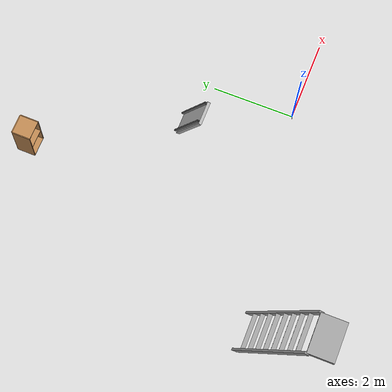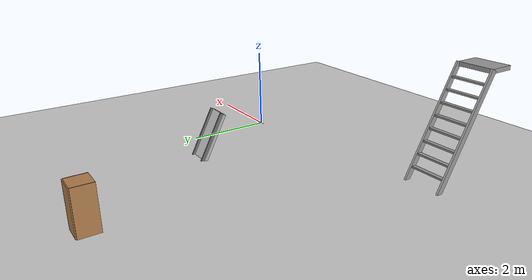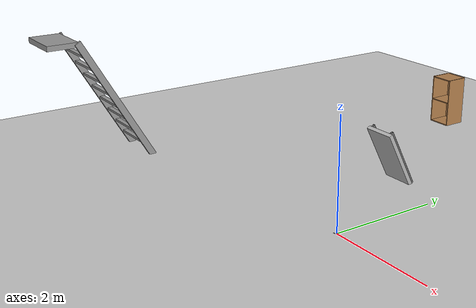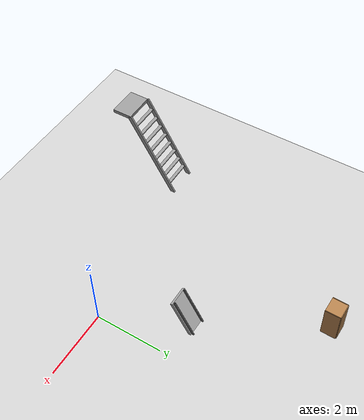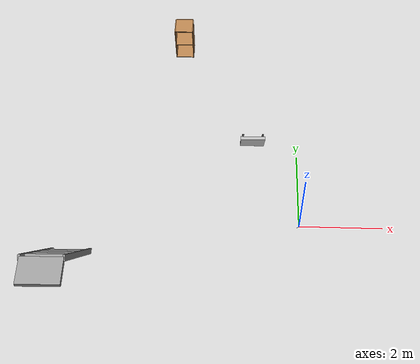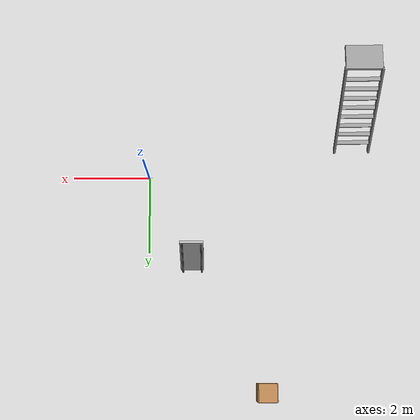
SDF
<sdf version="1.6">
 <world name="office">
  <model name="ground_plane">
   <static>1</static>
   <link name="link">
    <collision name="collision">
     <geometry><plane><normal>0 0 1</normal><size>100 100</size></plane></geometry>
     <surface><friction><ode><mu>100</mu><mu2>50</mu2></ode></friction></surface>
    </collision>
    <visual name="visual">
     <cast_shadows>0</cast_shadows>
     <geometry><plane><normal>0 0 1</normal><size>100 100</size></plane></geometry>
     <material>
      <script><uri>file://media/materials/scripts/gazebo.material</uri><name>Gazebo/Grey</name></script>
     </material>
    </visual>
   </link>
  </model>
  <model name="cabinet">
   <static>1</static>
   <link name="cabinet_bottom_plate">
    <inertial>
     <pose>0 0 -1 0 -0 0</pose>
     <inertia><ixx>2.05</ixx><ixy>0</ixy><ixz>0</ixz><iyy>2.05</iyy><iyz>0</iyz><izz>2.05</izz></inertia>
     <mass>25</mass>
    </inertial>
    <collision name="cabinet_bottom_plate_geom">
     <pose>0 0 0.01 0 -0 0</pose>
     <geometry><box><size>0.45 0.45 0.02</size></box></geometry>
    </collision>
    <visual name="cabinet_bottom_plate_geom_visual">
     <pose>0 0 0.01 0 -0 0</pose>
     <geometry><box><size>0.45 0.45 0.02</size></box></geometry>
     <material>
      <script><uri>file://media/materials/scripts/gazebo.material</uri><name>Gazebo/Wood</name></script>
     </material>
    </visual>
    <collision name="cabinet_bottom_plate_geom_cabinet_back_plate">
     <pose>0.235 0 0.51 0 -0 0</pose>
     <geometry><box><size>0.02 0.45 1.02</size></box></geometry>
    </collision>
    <visual name="cabinet_bottom_plate_geom_cabinet_back_plate_visual">
     <pose>0.235 0 0.51 0 -0 0</pose>
     <geometry><box><size>0.02 0.45 1.02</size></box></geometry>
     <material>
      <script><uri>file://media/materials/scripts/gazebo.material</uri><name>Gazebo/Wood</name></script>
     </material>
    </visual>
    <collision name="cabinet_bottom_plate_geom_cabinet_left_plate">
     <pose>0 0.235 0.51 0 -0 0</pose>
     <geometry><box><size>0.45 0.02 1.02</size></box></geometry>
    </collision>
    <visual name="cabinet_bottom_plate_geom_cabinet_left_plate_visual">
     <pose>0 0.235 0.51 0 -0 0</pose>
     <geometry><box><size>0.45 0.02 1.02</size></box></geometry>
     <material>
      <script><uri>file://media/materials/scripts/gazebo.material</uri><name>Gazebo/Wood</name></script>
     </material>
    </visual>
    <collision name="cabinet_bottom_plate_geom_cabinet_middle_plate">
     <pose>0 0 0.51 0 -0 0</pose>
     <geometry><box><size>0.45 0.45 0.02</size></box></geometry>
    </collision>
    <visual name="cabinet_bottom_plate_geom_cabinet_middle_plate_visual">
     <pose>0 0 0.51 0 -0 0</pose>
     <geometry><box><size>0.45 0.45 0.02</size></box></geometry>
     <material>
      <script><uri>file://media/materials/scripts/gazebo.material</uri><name>Gazebo/Wood</name></script>
     </material>
    </visual>
    <collision name="cabinet_bottom_plate_geom_cabinet_right_plate">
     <pose>0 -0.235 0.51 0 -0 0</pose>
     <geometry><box><size>0.45 0.02 1.02</size></box></geometry>
    </collision>
    <visual name="cabinet_bottom_plate_geom_cabinet_right_plate_visual">
     <pose>0 -0.235 0.51 0 -0 0</pose>
     <geometry><box><size>0.45 0.02 1.02</size></box></geometry>
     <material>
      <script><uri>file://media/materials/scripts/gazebo.material</uri><name>Gazebo/Wood</name></script>
     </material>
    </visual>
    <collision name="cabinet_bottom_plate_geom_cabinet_top_plate">
     <pose>0 0 1.01 0 -0 0</pose>
     <geometry><box><size>0.45 0.45 0.02</size></box></geometry>
    </collision>
    <visual name="cabinet_bottom_plate_geom_cabinet_top_plate_visual">
     <pose>0 0 1.01 0 -0 0</pose>
     <geometry><box><size>0.45 0.45 0.02</size></box></geometry>
     <material>
      <script><uri>file://media/materials/scripts/gazebo.material</uri><name>Gazebo/Wood</name></script>
     </material>
    </visual>
   </link>
   <pose>-2.99343 5.57624 0 0 -0 1.56574</pose>
  </model>
  <model name="ladder_60deg_0rails">
   <static>1</static>
   <link name="step0">
    <pose>0 0.15396 0.266667 0 -0 0</pose>
    <inertial>
     <mass>9.75482</mass>
     <inertia>
      <ixx>0.00957124</ixx>
      <iyy>0.65963</iyy>
      <izz>0.666842</izz>
      <ixy>0</ixy>
      <ixz>0</ixz>
      <iyz>0</iyz>
     </inertia>
    </inertial>
    <collision name="collision"><geometry><box><size>0.9 0.1016 0.0381</size></box></geometry></collision>
    <visual name="visual">
     <geometry><box><size>0.9 0.1016 0.0381</size></box></geometry>
     <material>
      <script><uri>file://media/materials/scripts/gazebo.material</uri><name>Gazebo/Grey</name></script>
     </material>
    </visual>
   </link>
   <link name="step1">
    <pose>0 0.30792 0.533333 0 -0 0</pose>
    <inertial>
     <mass>9.75482</mass>
     <inertia>
      <ixx>0.00957124</ixx>
      <iyy>0.65963</iyy>
      <izz>0.666842</izz>
      <ixy>0</ixy>
      <ixz>0</ixz>
      <iyz>0</iyz>
     </inertia>
    </inertial>
    <collision name="collision"><geometry><box><size>0.9 0.1016 0.0381</size></box></geometry></collision>
    <visual name="visual">
     <geometry><box><size>0.9 0.1016 0.0381</size></box></geometry>
     <material>
      <script><uri>file://media/materials/scripts/gazebo.material</uri><name>Gazebo/Grey</name></script>
     </material>
    </visual>
   </link>
   <link name="step2">
    <pose>0 0.46188 0.8 0 -0 0</pose>
    <inertial>
     <mass>9.75482</mass>
     <inertia>
      <ixx>0.00957124</ixx>
      <iyy>0.65963</iyy>
      <izz>0.666842</izz>
      <ixy>0</ixy>
      <ixz>0</ixz>
      <iyz>0</iyz>
     </inertia>
    </inertial>
    <collision name="collision"><geometry><box><size>0.9 0.1016 0.0381</size></box></geometry></collision>
    <visual name="visual">
     <geometry><box><size>0.9 0.1016 0.0381</size></box></geometry>
     <material>
      <script><uri>file://media/materials/scripts/gazebo.material</uri><name>Gazebo/Grey</name></script>
     </material>
    </visual>
   </link>
   <link name="step3">
    <pose>0 0.61584 1.06667 0 -0 0</pose>
    <inertial>
     <mass>9.75482</mass>
     <inertia>
      <ixx>0.00957124</ixx>
      <iyy>0.65963</iyy>
      <izz>0.666842</izz>
      <ixy>0</ixy>
      <ixz>0</ixz>
      <iyz>0</iyz>
     </inertia>
    </inertial>
    <collision name="collision"><geometry><box><size>0.9 0.1016 0.0381</size></box></geometry></collision>
    <visual name="visual">
     <geometry><box><size>0.9 0.1016 0.0381</size></box></geometry>
     <material>
      <script><uri>file://media/materials/scripts/gazebo.material</uri><name>Gazebo/Grey</name></script>
     </material>
    </visual>
   </link>
   <link name="step4">
    <pose>0 0.7698 1.33333 0 -0 0</pose>
    <inertial>
     <mass>9.75482</mass>
     <inertia>
      <ixx>0.00957124</ixx>
      <iyy>0.65963</iyy>
      <izz>0.666842</izz>
      <ixy>0</ixy>
      <ixz>0</ixz>
      <iyz>0</iyz>
     </inertia>
    </inertial>
    <collision name="collision"><geometry><box><size>0.9 0.1016 0.0381</size></box></geometry></collision>
    <visual name="visual">
     <geometry><box><size>0.9 0.1016 0.0381</size></box></geometry>
     <material>
      <script><uri>file://media/materials/scripts/gazebo.material</uri><name>Gazebo/Grey</name></script>
     </material>
    </visual>
   </link>
   <link name="step5">
    <pose>0 0.92376 1.6 0 -0 0</pose>
    <inertial>
     <mass>9.75482</mass>
     <inertia>
      <ixx>0.00957124</ixx>
      <iyy>0.65963</iyy>
      <izz>0.666842</izz>
      <ixy>0</ixy>
      <ixz>0</ixz>
      <iyz>0</iyz>
     </inertia>
    </inertial>
    <collision name="collision"><geometry><box><size>0.9 0.1016 0.0381</size></box></geometry></collision>
    <visual name="visual">
     <geometry><box><size>0.9 0.1016 0.0381</size></box></geometry>
     <material>
      <script><uri>file://media/materials/scripts/gazebo.material</uri><name>Gazebo/Grey</name></script>
     </material>
    </visual>
   </link>
   <link name="step6">
    <pose>0 1.07772 1.86667 0 -0 0</pose>
    <inertial>
     <mass>9.75482</mass>
     <inertia>
      <ixx>0.00957124</ixx>
      <iyy>0.65963</iyy>
      <izz>0.666842</izz>
      <ixy>0</ixy>
      <ixz>0</ixz>
      <iyz>0</iyz>
     </inertia>
    </inertial>
    <collision name="collision"><geometry><box><size>0.9 0.1016 0.0381</size></box></geometry></collision>
    <visual name="visual">
     <geometry><box><size>0.9 0.1016 0.0381</size></box></geometry>
     <material>
      <script><uri>file://media/materials/scripts/gazebo.material</uri><name>Gazebo/Grey</name></script>
     </material>
    </visual>
   </link>
   <link name="step7">
    <pose>0 1.23168 2.13333 0 -0 0</pose>
    <inertial>
     <mass>9.75482</mass>
     <inertia>
      <ixx>0.00957124</ixx>
      <iyy>0.65963</iyy>
      <izz>0.666842</izz>
      <ixy>0</ixy>
      <ixz>0</ixz>
      <iyz>0</iyz>
     </inertia>
    </inertial>
    <collision name="collision"><geometry><box><size>0.9 0.1016 0.0381</size></box></geometry></collision>
    <visual name="visual">
     <geometry><box><size>0.9 0.1016 0.0381</size></box></geometry>
     <material>
      <script><uri>file://media/materials/scripts/gazebo.material</uri><name>Gazebo/Grey</name></script>
     </material>
    </visual>
   </link>
   <link name="landing">
    <pose>0 1.68564 2.4 0 -0 0</pose>
    <inertial>
     <mass>57.6072</mass>
     <inertia><ixx>1.73518</ixx><iyy>3.89545</iyy><izz>5.6167</izz><ixy>0</ixy><ixz>0</ixz><iyz>0</iyz></inertia>
    </inertial>
    <collision name="collision"><geometry><box><size>0.9 0.6 0.1016</size></box></geometry></collision>
    <visual name="visual">
     <geometry><box><size>0.9 0.6 0.1016</size></box></geometry>
     <material>
      <script><uri>file://media/materials/scripts/gazebo.material</uri><name>Gazebo/Grey</name></script>
     </material>
    </visual>
   </link>
   <link name="left_side_wall">
    <pose>-0.45 0.69282 1.2 1.0472 -0 0</pose>
    <collision name="collision"><geometry><box><size>0.0508 2.85128 0.13</size></box></geometry></collision>
    <visual name="visual">
     <geometry><box><size>0.0508 2.85128 0.13</size></box></geometry>
     <material>
      <script><uri>file://media/materials/scripts/gazebo.material</uri><name>Gazebo/Grey</name></script>
     </material>
    </visual>
   </link>
   <link name="right_side_wall">
    <pose>0.45 0.69282 1.2 1.0472 -0 0</pose>
    <collision name="collision"><geometry><box><size>0.0508 2.85128 0.13</size></box></geometry></collision>
    <visual name="visual">
     <geometry><box><size>0.0508 2.85128 0.13</size></box></geometry>
     <material>
      <script><uri>file://media/materials/scripts/gazebo.material</uri><name>Gazebo/Grey</name></script>
     </material>
    </visual>
   </link>
   <pose>-5.37191 -0.741377 0 0 0 -3.13359</pose>
  </model>
  <model name="metal_peg">
   <link name="link">
    <pose>0 0 0.031 0 -0 0</pose>
    <inertial>
     <mass>0.0121</mass>
     <inertia>
      <ixx>3.90898e-06</ixx>
      <ixy>0</ixy>
      <ixz>0</ixz>
      <iyy>3.90898e-06</iyy>
      <iyz>0</iyz>
      <izz>6.58845e-08</izz>
     </inertia>
    </inertial>
    <collision name="collision">
     <geometry><cylinder><radius>0.0033</radius><length>0.062</length></cylinder></geometry>
     <surface>
      <contact>
       <poissons_ratio>0.305</poissons_ratio>
       <elastic_modulus>2e+11</elastic_modulus>
       <ode><kp>100000</kp><kd>100</kd><max_vel>100</max_vel><min_depth>0.001</min_depth></ode>
      </contact>
      <friction>
       <torsional>
        <coefficient>1</coefficient>
        <use_patch_radius>0</use_patch_radius>
        <surface_radius>0.01</surface_radius>
       </torsional>
      </friction>
     </surface>
    </collision>
    <visual name="visual">
     <geometry><cylinder><radius>0.0033</radius><length>0.062</length></cylinder></geometry>
     <material>
      <script><uri>file://media/materials/scripts/gazebo.material</uri><name>Gazebo/Grey</name></script>
     </material>
    </visual>
   </link>
   <pose>-0.008362 0.000364 0.002299 -1.5708 -1.36302 2.07043</pose>
  </model>
  <model name="frc2016_moat">
   <static>1</static>
   <link name="link">
    <inertial>
     <mass>10</mass>
     <pose>0 0 0.06738 0 -0 0</pose>
     <inertia><ixx>0.312195</ixx><ixy>0</ixy><ixz>0</ixz><iyy>1.35927</iyy><iyz>0</iyz><izz>1.64109</izz></inertia>
    </inertial>
    <visual name="platform">
     <pose>0 0 0.0381 0 -0 0</pose>
     <geometry><box><size>1.27 0.5969 0.0762</size></box></geometry>
    </visual>
    <collision name="platform">
     <pose>0 0 0.0381 0 -0 0</pose>
     <geometry><box><size>1.27 0.5969 0.0762</size></box></geometry>
    </collision>
    <visual name="tube1_side1">
     <pose>0 -0.25876 0.10301 0 -0 0</pose>
     <geometry><box><size>1.27 0.003175 0.0635</size></box></geometry>
     <material><ambient>0.46 0.46 0.46 1</ambient><diffuse>0.46 0.46 0.46 1</diffuse></material>
    </visual>
    <collision name="tube1_side1">
     <pose>0 -0.25876 0.10301 0 -0 0</pose>
     <geometry><box><size>1.27 0.003175 0.0635</size></box></geometry>
    </collision>
    <visual name="tube1_side2">
     <pose>0 -0.22384 0.10301 0 -0 0</pose>
     <geometry><box><size>1.27 0.003175 0.0635</size></box></geometry>
     <material><ambient>0.46 0.46 0.46 1</ambient><diffuse>0.46 0.46 0.46 1</diffuse></material>
    </visual>
    <collision name="tube1_side2">
     <pose>0 -0.22384 0.10301 0 -0 0</pose>
     <geometry><box><size>1.27 0.003175 0.0635</size></box></geometry>
    </collision>
    <visual name="tube1_top">
     <pose>0 -0.2413 0.13317 0 -0 0</pose>
     <geometry><box><size>1.27 0.0381 0.003175</size></box></geometry>
     <material><ambient>0.46 0.46 0.46 1</ambient><diffuse>0.46 0.46 0.46 1</diffuse></material>
    </visual>
    <collision name="tube1_top">
     <pose>0 -0.2413 0.13317 0 -0 0</pose>
     <geometry><box><size>1.27 0.0381 0.003175</size></box></geometry>
    </collision>
    <visual name="tube2_side1">
     <pose>0 0.22384 0.10301 0 -0 0</pose>
     <geometry><box><size>1.27 0.003175 0.0635</size></box></geometry>
     <material><ambient>0.46 0.46 0.46 1</ambient><diffuse>0.46 0.46 0.46 1</diffuse></material>
    </visual>
    <collision name="tube2_side1">
     <pose>0 0.22384 0.10301 0 -0 0</pose>
     <geometry><box><size>1.27 0.003175 0.0635</size></box></geometry>
    </collision>
    <visual name="tube2_side2">
     <pose>0 0.25876 0.10301 0 -0 0</pose>
     <geometry><box><size>1.27 0.003175 0.0635</size></box></geometry>
     <material><ambient>0.46 0.46 0.46 1</ambient><diffuse>0.46 0.46 0.46 1</diffuse></material>
    </visual>
    <collision name="tube2_side2">
     <pose>0 0.25876 0.10301 0 -0 0</pose>
     <geometry><box><size>1.27 0.003175 0.0635</size></box></geometry>
    </collision>
    <visual name="tube2_top">
     <pose>0 0.2413 0.13317 0 -0 0</pose>
     <geometry><box><size>1.27 0.0381 0.003175</size></box></geometry>
     <material><ambient>0.46 0.46 0.46 1</ambient><diffuse>0.46 0.46 0.46 1</diffuse></material>
    </visual>
    <collision name="tube2_top">
     <pose>0 0.2413 0.13317 0 -0 0</pose>
     <geometry><box><size>1.27 0.0381 0.003175</size></box></geometry>
    </collision>
   </link>
   <pose>-1.12996 2.12051 0.454468 0 -1.0886 -1.56831</pose>
  </model>
 </world>
</sdf>
